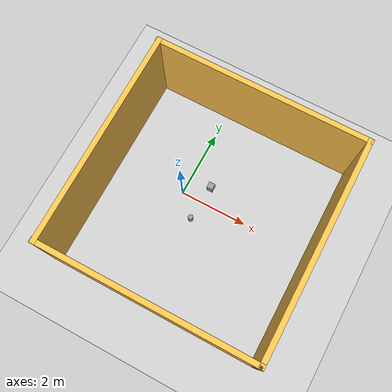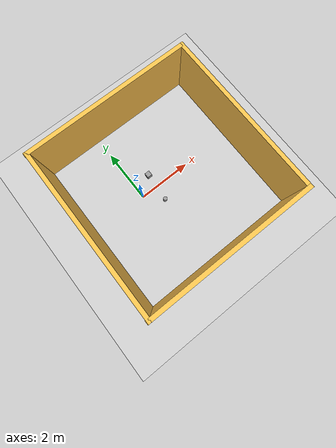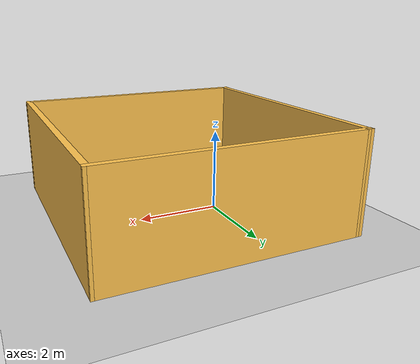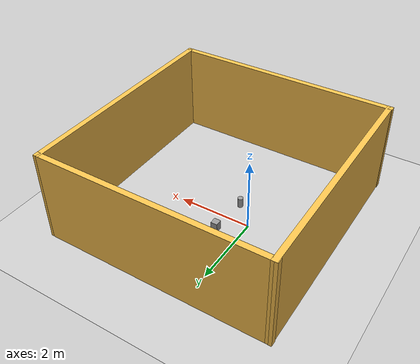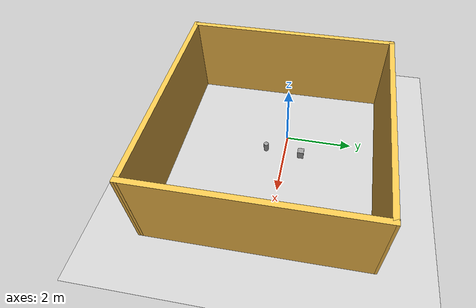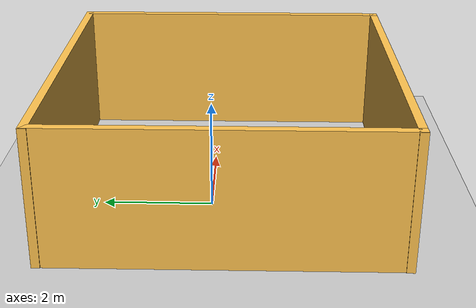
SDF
<sdf version="1.7">
 <world name="default">
  <light name="sun" type="directional">
   <pose>0 0 10 0 -0 0</pose>
   <diffuse>0.8 0.8 0.8 1</diffuse>
   <specular>0.2 0.2 0.2 1</specular>
   <attenuation>
    <range>1000</range>
    <constant>0.9</constant>
    <linear>0.01</linear>
    <quadratic>0.001</quadratic>
   </attenuation>
   <direction>-0.5 0.1 -0.9</direction>
   <spot><inner_angle>0</inner_angle><outer_angle>0</outer_angle><falloff>0</falloff></spot>
  </light>
  <model name="ground_plane">
   <static>1</static>
   <link name="link">
    <collision name="collision">
     <geometry><plane><normal>0 0 1</normal><size>100 100</size></plane></geometry>
     <surface>
      <contact><collide_bitmask>65535</collide_bitmask></contact>
      <friction><ode><mu>100</mu><mu2>50</mu2></ode></friction>
     </surface>
    </collision>
    <visual name="visual">
     <cast_shadows>0</cast_shadows>
     <geometry><plane><normal>0 0 1</normal><size>100 100</size></plane></geometry>
     <material>
      <script><uri>file://media/materials/scripts/gazebo.material</uri><name>Gazebo/Grey</name></script>
     </material>
    </visual>
   </link>
  </model>
  <gravity>0 0 -9.8</gravity>
  <magnetic_field>6e-06 2.3e-05 -4.2e-05</magnetic_field>
  <atmosphere type="adiabatic"/>
  <physics type="ode">
   <max_step_size>0.001</max_step_size>
   <real_time_factor>1</real_time_factor>
   <real_time_update_rate>1000</real_time_update_rate>
  </physics>
  <scene><ambient>0.4 0.4 0.4 1</ambient><background>0.7 0.7 0.7 1</background><shadows>1</shadows></scene>
  <spherical_coordinates>
   <surface_model>EARTH_WGS84</surface_model>
   <latitude_deg>0</latitude_deg>
   <longitude_deg>0</longitude_deg>
   <elevation>0</elevation>
   <heading_deg>0</heading_deg>
  </spherical_coordinates>
  <model name="workspace2">
   <pose>0.895811 -0.257376 0 0 -0 0</pose>
   <link name="Wall_10">
    <collision name="Wall_10_Collision">
     <geometry><box><size>6.25 0.15 2.5</size></box></geometry>
     <pose>0 0 1.25 0 -0 0</pose>
    </collision>
    <visual name="Wall_10_Visual">
     <pose>0 0 1.25 0 -0 0</pose>
     <geometry><box><size>6.25 0.15 2.5</size></box></geometry>
     <material>
      <script><uri>file://media/materials/scripts/gazebo.material</uri><name>Gazebo/Grey</name></script>
      <ambient>1 0.764706 0.305882 1</ambient>
     </material>
     <meta><layer>0</layer></meta>
    </visual>
    <pose>0.007511 -3.05616 0 0 -0 3.14159</pose>
   </link>
   <link name="Wall_11">
    <collision name="Wall_11_Collision">
     <geometry><box><size>6.26234 0.15 2.5</size></box></geometry>
     <pose>0 0 1.25 0 -0 0</pose>
    </collision>
    <visual name="Wall_11_Visual">
     <pose>0 0 1.25 0 -0 0</pose>
     <geometry><box><size>6.26234 0.15 2.5</size></box></geometry>
     <material>
      <script><uri>file://media/materials/scripts/gazebo.material</uri><name>Gazebo/Grey</name></script>
      <ambient>1 0.764706 0.305882 1</ambient>
     </material>
     <meta><layer>0</layer></meta>
    </visual>
    <pose>-3.03488 0 0 0 -0 1.57329</pose>
   </link>
   <link name="Wall_12">
    <collision name="Wall_12_Collision">
     <geometry><box><size>6.25 0.15 2.5</size></box></geometry>
     <pose>0 0 1.25 0 -0 0</pose>
    </collision>
    <visual name="Wall_12_Visual">
     <pose>0 0 1.25 0 -0 0</pose>
     <geometry><box><size>6.25 0.15 2.5</size></box></geometry>
     <material>
      <script><uri>file://media/materials/scripts/gazebo.material</uri><name>Gazebo/Grey</name></script>
      <ambient>1 0.764706 0.305882 1</ambient>
     </material>
     <meta><layer>0</layer></meta>
    </visual>
    <pose>-0.007698 3.05616 0 0 -0 0</pose>
   </link>
   <link name="Wall_13">
    <collision name="Wall_13_Collision">
     <geometry><box><size>6.26234 0.15 2.5</size></box></geometry>
     <pose>0 0 1.25 0 -0 0</pose>
    </collision>
    <visual name="Wall_13_Visual">
     <pose>0 0 1.25 0 -0 0</pose>
     <geometry><box><size>6.26234 0.15 2.5</size></box></geometry>
     <material>
      <script><uri>file://media/materials/scripts/gazebo.material</uri><name>Gazebo/Grey</name></script>
      <ambient>1 0.764706 0.305882 1</ambient>
     </material>
     <meta><layer>0</layer></meta>
    </visual>
    <pose>3.04991 0 0 0 -0 -1.56831</pose>
   </link>
   <static>1</static>
  </model>
  <model name="unit_box">
   <pose>0.643881 0.508307 0.12844 -5e-06 1e-06 4.5e-05</pose>
   <link name="link">
    <inertial>
     <mass>1</mass>
     <inertia>
      <ixx>0.166667</ixx>
      <ixy>0</ixy>
      <ixz>0</ixz>
      <iyy>0.166667</iyy>
      <iyz>0</iyz>
      <izz>0.166667</izz>
     </inertia>
    </inertial>
    <collision name="collision">
     <geometry><box><size>0.184534 0.185976 0.256881</size></box></geometry>
    </collision>
    <visual name="visual">
     <geometry><box><size>0.184534 0.185976 0.256881</size></box></geometry>
     <material>
      <script><name>Gazebo/Grey</name><uri>file://media/materials/scripts/gazebo.material</uri></script>
     </material>
    </visual>
   </link>
  </model>
  <model name="unit_cylinder">
   <pose>0.568498 -0.581606 0.136951 0 -0 1e-06</pose>
   <link name="link">
    <inertial>
     <mass>1</mass>
     <inertia><ixx>0.145833</ixx><ixy>0</ixy><ixz>0</ixz><iyy>0.145833</iyy><iyz>0</iyz><izz>0.125</izz></inertia>
    </inertial>
    <collision name="collision">
     <geometry><cylinder><radius>0.0722921</radius><length>0.27392</length></cylinder></geometry>
    </collision>
    <visual name="visual">
     <geometry><cylinder><radius>0.0722921</radius><length>0.27392</length></cylinder></geometry>
     <material>
      <script><name>Gazebo/Grey</name><uri>file://media/materials/scripts/gazebo.material</uri></script>
     </material>
    </visual>
   </link>
  </model>
 </world>
</sdf>
